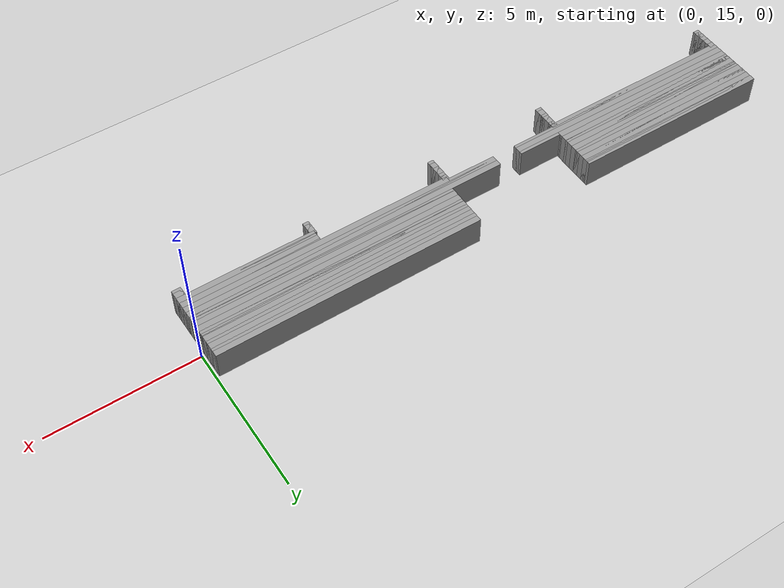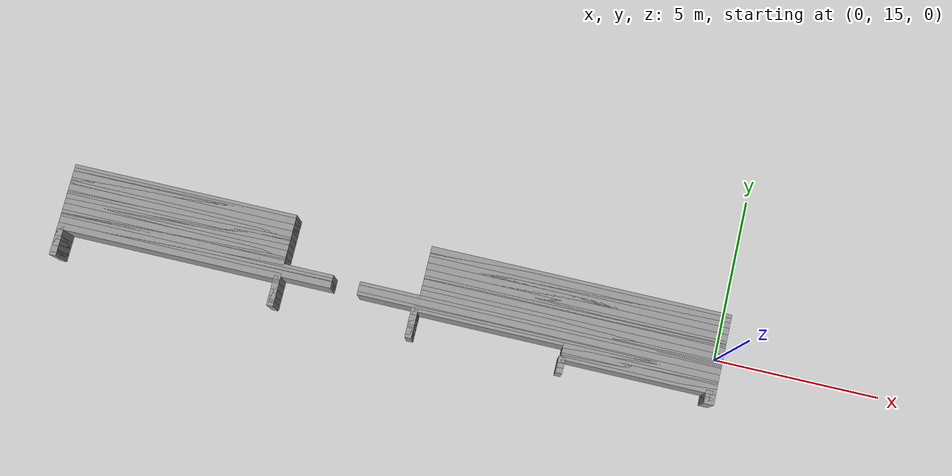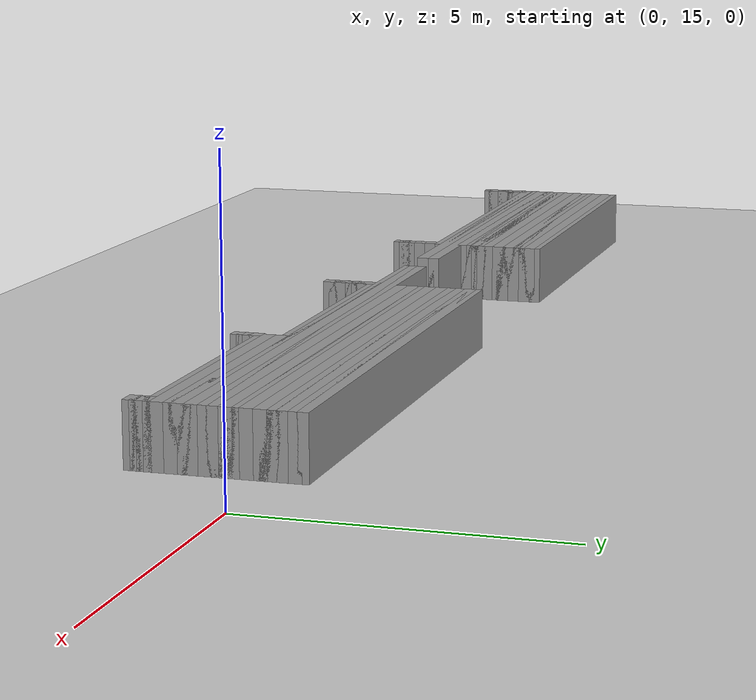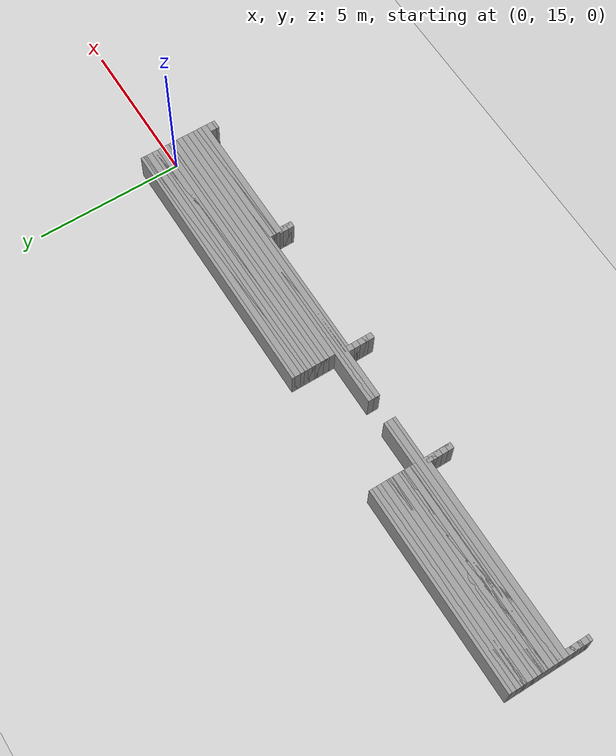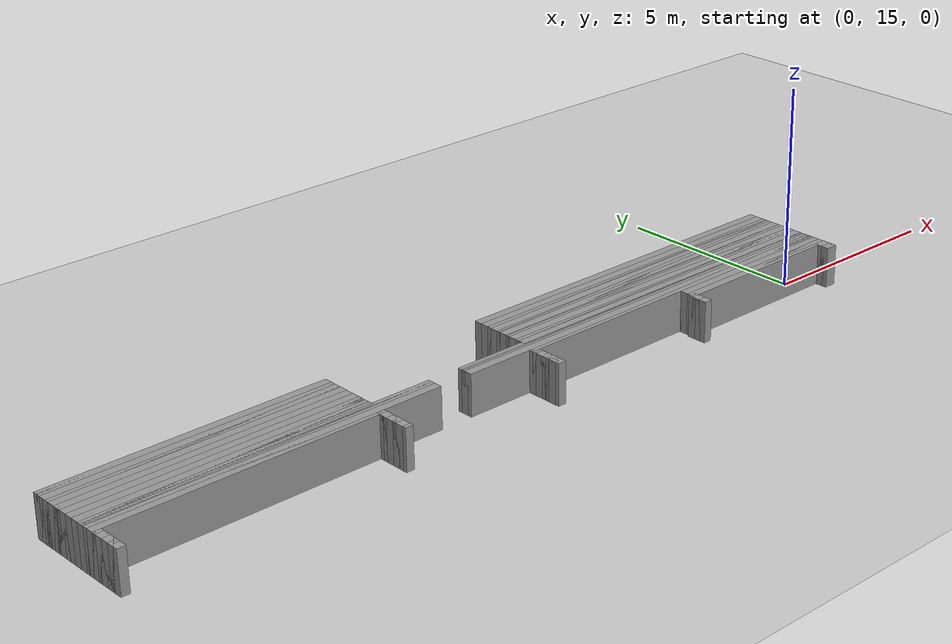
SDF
<sdf version="1.6">
 <world name="GridMap">
  <include><uri>model://sun</uri></include>
  <include><uri>model://ground_plane</uri></include>
  <model name="GridMap">
   <link name="Wall_(45.5,135.0)">
    <collision name="Wall_(45.5,135.0)_Collision">
     <geometry><box><size>0.2 0.2 1.0</size></box></geometry>
     <pose>-4.55 13.5 0.5 0 -0 0</pose>
    </collision>
    <visual name="Wall_(45.5,135.0)_Visual">
     <geometry><box><size>0.2 0.2 1.0</size></box></geometry>
     <pose>-4.55 13.5 0.5 0 -0 0</pose>
     <material>
      <script><uri>file://media/materials/scripts/gazebo.material</uri><name>Gazebo/Grey</name></script>
      <ambient>1 1 1 1</ambient>
     </material>
     <meta><layer>0</layer></meta>
    </visual>
    <pose>0 0 0.5 0 -0 0</pose>
   </link>
   <link name="Wall_(90.5,135.0)">
    <collision name="Wall_(90.5,135.0)_Collision">
     <geometry><box><size>0.2 0.2 1.0</size></box></geometry>
     <pose>-9.05 13.5 0.5 0 -0 0</pose>
    </collision>
    <visual name="Wall_(90.5,135.0)_Visual">
     <geometry><box><size>0.2 0.2 1.0</size></box></geometry>
     <pose>-9.05 13.5 0.5 0 -0 0</pose>
     <material>
      <script><uri>file://media/materials/scripts/gazebo.material</uri><name>Gazebo/Grey</name></script>
      <ambient>1 1 1 1</ambient>
     </material>
     <meta><layer>0</layer></meta>
    </visual>
    <pose>0 0 0.5 0 -0 0</pose>
   </link>
   <link name="Wall_(132.0,135.0)">
    <collision name="Wall_(132.0,135.0)_Collision">
     <geometry><box><size>0.2 0.2 1.0</size></box></geometry>
     <pose>-13.200000000000001 13.5 0.5 0 -0 0</pose>
    </collision>
    <visual name="Wall_(132.0,135.0)_Visual">
     <geometry><box><size>0.2 0.2 1.0</size></box></geometry>
     <pose>-13.200000000000001 13.5 0.5 0 -0 0</pose>
     <material>
      <script><uri>file://media/materials/scripts/gazebo.material</uri><name>Gazebo/Grey</name></script>
      <ambient>1 1 1 1</ambient>
     </material>
     <meta><layer>0</layer></meta>
    </visual>
    <pose>0 0 0.5 0 -0 0</pose>
   </link>
   <link name="Wall_(198.0,135.0)">
    <collision name="Wall_(198.0,135.0)_Collision">
     <geometry><box><size>0.2 0.2 1.0</size></box></geometry>
     <pose>-19.8 13.5 0.5 0 -0 0</pose>
    </collision>
    <visual name="Wall_(198.0,135.0)_Visual">
     <geometry><box><size>0.2 0.2 1.0</size></box></geometry>
     <pose>-19.8 13.5 0.5 0 -0 0</pose>
     <material>
      <script><uri>file://media/materials/scripts/gazebo.material</uri><name>Gazebo/Grey</name></script>
      <ambient>1 1 1 1</ambient>
     </material>
     <meta><layer>0</layer></meta>
    </visual>
    <pose>0 0 0.5 0 -0 0</pose>
   </link>
   <link name="Wall_(1.5,136.0)">
    <collision name="Wall_(1.5,136.0)_Collision">
     <geometry><box><size>0.30000000000000004 0.2 1.0</size></box></geometry>
     <pose>-0.15000000000000002 13.600000000000001 0.5 0 -0 0</pose>
    </collision>
    <visual name="Wall_(1.5,136.0)_Visual">
     <geometry><box><size>0.30000000000000004 0.2 1.0</size></box></geometry>
     <pose>-0.15000000000000002 13.600000000000001 0.5 0 -0 0</pose>
     <material>
      <script><uri>file://media/materials/scripts/gazebo.material</uri><name>Gazebo/Grey</name></script>
      <ambient>1 1 1 1</ambient>
     </material>
     <meta><layer>0</layer></meta>
    </visual>
    <pose>0 0 0.5 0 -0 0</pose>
   </link>
   <link name="Wall_(45.5,136.0)">
    <collision name="Wall_(45.5,136.0)_Collision">
     <geometry><box><size>0.2 0.2 1.0</size></box></geometry>
     <pose>-4.55 13.600000000000001 0.5 0 -0 0</pose>
    </collision>
    <visual name="Wall_(45.5,136.0)_Visual">
     <geometry><box><size>0.2 0.2 1.0</size></box></geometry>
     <pose>-4.55 13.600000000000001 0.5 0 -0 0</pose>
     <material>
      <script><uri>file://media/materials/scripts/gazebo.material</uri><name>Gazebo/Grey</name></script>
      <ambient>1 1 1 1</ambient>
     </material>
     <meta><layer>0</layer></meta>
    </visual>
    <pose>0 0 0.5 0 -0 0</pose>
   </link>
   <link name="Wall_(90.5,136.0)">
    <collision name="Wall_(90.5,136.0)_Collision">
     <geometry><box><size>0.2 0.2 1.0</size></box></geometry>
     <pose>-9.05 13.600000000000001 0.5 0 -0 0</pose>
    </collision>
    <visual name="Wall_(90.5,136.0)_Visual">
     <geometry><box><size>0.2 0.2 1.0</size></box></geometry>
     <pose>-9.05 13.600000000000001 0.5 0 -0 0</pose>
     <material>
      <script><uri>file://media/materials/scripts/gazebo.material</uri><name>Gazebo/Grey</name></script>
      <ambient>1 1 1 1</ambient>
     </material>
     <meta><layer>0</layer></meta>
    </visual>
    <pose>0 0 0.5 0 -0 0</pose>
   </link>
   <link name="Wall_(132.0,136.0)">
    <collision name="Wall_(132.0,136.0)_Collision">
     <geometry><box><size>0.2 0.2 1.0</size></box></geometry>
     <pose>-13.200000000000001 13.600000000000001 0.5 0 -0 0</pose>
    </collision>
    <visual name="Wall_(132.0,136.0)_Visual">
     <geometry><box><size>0.2 0.2 1.0</size></box></geometry>
     <pose>-13.200000000000001 13.600000000000001 0.5 0 -0 0</pose>
     <material>
      <script><uri>file://media/materials/scripts/gazebo.material</uri><name>Gazebo/Grey</name></script>
      <ambient>1 1 1 1</ambient>
     </material>
     <meta><layer>0</layer></meta>
    </visual>
    <pose>0 0 0.5 0 -0 0</pose>
   </link>
   <link name="Wall_(198.0,136.0)">
    <collision name="Wall_(198.0,136.0)_Collision">
     <geometry><box><size>0.2 0.2 1.0</size></box></geometry>
     <pose>-19.8 13.600000000000001 0.5 0 -0 0</pose>
    </collision>
    <visual name="Wall_(198.0,136.0)_Visual">
     <geometry><box><size>0.2 0.2 1.0</size></box></geometry>
     <pose>-19.8 13.600000000000001 0.5 0 -0 0</pose>
     <material>
      <script><uri>file://media/materials/scripts/gazebo.material</uri><name>Gazebo/Grey</name></script>
      <ambient>1 1 1 1</ambient>
     </material>
     <meta><layer>0</layer></meta>
    </visual>
    <pose>0 0 0.5 0 -0 0</pose>
   </link>
   <link name="Wall_(1.5,137.0)">
    <collision name="Wall_(1.5,137.0)_Collision">
     <geometry><box><size>0.30000000000000004 0.2 1.0</size></box></geometry>
     <pose>-0.15000000000000002 13.700000000000001 0.5 0 -0 0</pose>
    </collision>
    <visual name="Wall_(1.5,137.0)_Visual">
     <geometry><box><size>0.30000000000000004 0.2 1.0</size></box></geometry>
     <pose>-0.15000000000000002 13.700000000000001 0.5 0 -0 0</pose>
     <material>
      <script><uri>file://media/materials/scripts/gazebo.material</uri><name>Gazebo/Grey</name></script>
      <ambient>1 1 1 1</ambient>
     </material>
     <meta><layer>0</layer></meta>
    </visual>
    <pose>0 0 0.5 0 -0 0</pose>
   </link>
   <link name="Wall_(45.5,137.0)">
    <collision name="Wall_(45.5,137.0)_Collision">
     <geometry><box><size>0.2 0.2 1.0</size></box></geometry>
     <pose>-4.55 13.700000000000001 0.5 0 -0 0</pose>
    </collision>
    <visual name="Wall_(45.5,137.0)_Visual">
     <geometry><box><size>0.2 0.2 1.0</size></box></geometry>
     <pose>-4.55 13.700000000000001 0.5 0 -0 0</pose>
     <material>
      <script><uri>file://media/materials/scripts/gazebo.material</uri><name>Gazebo/Grey</name></script>
      <ambient>1 1 1 1</ambient>
     </material>
     <meta><layer>0</layer></meta>
    </visual>
    <pose>0 0 0.5 0 -0 0</pose>
   </link>
   <link name="Wall_(90.5,137.0)">
    <collision name="Wall_(90.5,137.0)_Collision">
     <geometry><box><size>0.2 0.2 1.0</size></box></geometry>
     <pose>-9.05 13.700000000000001 0.5 0 -0 0</pose>
    </collision>
    <visual name="Wall_(90.5,137.0)_Visual">
     <geometry><box><size>0.2 0.2 1.0</size></box></geometry>
     <pose>-9.05 13.700000000000001 0.5 0 -0 0</pose>
     <material>
      <script><uri>file://media/materials/scripts/gazebo.material</uri><name>Gazebo/Grey</name></script>
      <ambient>1 1 1 1</ambient>
     </material>
     <meta><layer>0</layer></meta>
    </visual>
    <pose>0 0 0.5 0 -0 0</pose>
   </link>
   <link name="Wall_(132.0,137.0)">
    <collision name="Wall_(132.0,137.0)_Collision">
     <geometry><box><size>0.2 0.2 1.0</size></box></geometry>
     <pose>-13.200000000000001 13.700000000000001 0.5 0 -0 0</pose>
    </collision>
    <visual name="Wall_(132.0,137.0)_Visual">
     <geometry><box><size>0.2 0.2 1.0</size></box></geometry>
     <pose>-13.200000000000001 13.700000000000001 0.5 0 -0 0</pose>
     <material>
      <script><uri>file://media/materials/scripts/gazebo.material</uri><name>Gazebo/Grey</name></script>
      <ambient>1 1 1 1</ambient>
     </material>
     <meta><layer>0</layer></meta>
    </visual>
    <pose>0 0 0.5 0 -0 0</pose>
   </link>
   <link name="Wall_(198.0,137.0)">
    <collision name="Wall_(198.0,137.0)_Collision">
     <geometry><box><size>0.2 0.2 1.0</size></box></geometry>
     <pose>-19.8 13.700000000000001 0.5 0 -0 0</pose>
    </collision>
    <visual name="Wall_(198.0,137.0)_Visual">
     <geometry><box><size>0.2 0.2 1.0</size></box></geometry>
     <pose>-19.8 13.700000000000001 0.5 0 -0 0</pose>
     <material>
      <script><uri>file://media/materials/scripts/gazebo.material</uri><name>Gazebo/Grey</name></script>
      <ambient>1 1 1 1</ambient>
     </material>
     <meta><layer>0</layer></meta>
    </visual>
    <pose>0 0 0.5 0 -0 0</pose>
   </link>
   <link name="Wall_(1.5,138.0)">
    <collision name="Wall_(1.5,138.0)_Collision">
     <geometry><box><size>0.30000000000000004 0.2 1.0</size></box></geometry>
     <pose>-0.15000000000000002 13.8 0.5 0 -0 0</pose>
    </collision>
    <visual name="Wall_(1.5,138.0)_Visual">
     <geometry><box><size>0.30000000000000004 0.2 1.0</size></box></geometry>
     <pose>-0.15000000000000002 13.8 0.5 0 -0 0</pose>
     <material>
      <script><uri>file://media/materials/scripts/gazebo.material</uri><name>Gazebo/Grey</name></script>
      <ambient>1 1 1 1</ambient>
     </material>
     <meta><layer>0</layer></meta>
    </visual>
    <pose>0 0 0.5 0 -0 0</pose>
   </link>
   <link name="Wall_(45.5,138.0)">
    <collision name="Wall_(45.5,138.0)_Collision">
     <geometry><box><size>0.2 0.2 1.0</size></box></geometry>
     <pose>-4.55 13.8 0.5 0 -0 0</pose>
    </collision>
    <visual name="Wall_(45.5,138.0)_Visual">
     <geometry><box><size>0.2 0.2 1.0</size></box></geometry>
     <pose>-4.55 13.8 0.5 0 -0 0</pose>
     <material>
      <script><uri>file://media/materials/scripts/gazebo.material</uri><name>Gazebo/Grey</name></script>
      <ambient>1 1 1 1</ambient>
     </material>
     <meta><layer>0</layer></meta>
    </visual>
    <pose>0 0 0.5 0 -0 0</pose>
   </link>
   <link name="Wall_(90.5,138.0)">
    <collision name="Wall_(90.5,138.0)_Collision">
     <geometry><box><size>0.2 0.2 1.0</size></box></geometry>
     <pose>-9.05 13.8 0.5 0 -0 0</pose>
    </collision>
    <visual name="Wall_(90.5,138.0)_Visual">
     <geometry><box><size>0.2 0.2 1.0</size></box></geometry>
     <pose>-9.05 13.8 0.5 0 -0 0</pose>
     <material>
      <script><uri>file://media/materials/scripts/gazebo.material</uri><name>Gazebo/Grey</name></script>
      <ambient>1 1 1 1</ambient>
     </material>
     <meta><layer>0</layer></meta>
    </visual>
    <pose>0 0 0.5 0 -0 0</pose>
   </link>
   <link name="Wall_(132.0,138.0)">
    <collision name="Wall_(132.0,138.0)_Collision">
     <geometry><box><size>0.2 0.2 1.0</size></box></geometry>
     <pose>-13.200000000000001 13.8 0.5 0 -0 0</pose>
    </collision>
    <visual name="Wall_(132.0,138.0)_Visual">
     <geometry><box><size>0.2 0.2 1.0</size></box></geometry>
     <pose>-13.200000000000001 13.8 0.5 0 -0 0</pose>
     <material>
      <script><uri>file://media/materials/scripts/gazebo.material</uri><name>Gazebo/Grey</name></script>
      <ambient>1 1 1 1</ambient>
     </material>
     <meta><layer>0</layer></meta>
    </visual>
    <pose>0 0 0.5 0 -0 0</pose>
   </link>
   <link name="Wall_(198.0,138.0)">
    <collision name="Wall_(198.0,138.0)_Collision">
     <geometry><box><size>0.2 0.2 1.0</size></box></geometry>
     <pose>-19.8 13.8 0.5 0 -0 0</pose>
    </collision>
    <visual name="Wall_(198.0,138.0)_Visual">
     <geometry><box><size>0.2 0.2 1.0</size></box></geometry>
     <pose>-19.8 13.8 0.5 0 -0 0</pose>
     <material>
      <script><uri>file://media/materials/scripts/gazebo.material</uri><name>Gazebo/Grey</name></script>
      <ambient>1 1 1 1</ambient>
     </material>
     <meta><layer>0</layer></meta>
    </visual>
    <pose>0 0 0.5 0 -0 0</pose>
   </link>
   <link name="Wall_(23.0,139.0)">
    <collision name="Wall_(23.0,139.0)_Collision">
     <geometry><box><size>4.6000000000000005 0.2 1.0</size></box></geometry>
     <pose>-2.3000000000000003 13.9 0.5 0 -0 0</pose>
    </collision>
    <visual name="Wall_(23.0,139.0)_Visual">
     <geometry><box><size>4.6000000000000005 0.2 1.0</size></box></geometry>
     <pose>-2.3000000000000003 13.9 0.5 0 -0 0</pose>
     <material>
      <script><uri>file://media/materials/scripts/gazebo.material</uri><name>Gazebo/Grey</name></script>
      <ambient>1 1 1 1</ambient>
     </material>
     <meta><layer>0</layer></meta>
    </visual>
    <pose>0 0 0.5 0 -0 0</pose>
   </link>
   <link name="Wall_(90.5,139.0)">
    <collision name="Wall_(90.5,139.0)_Collision">
     <geometry><box><size>0.2 0.2 1.0</size></box></geometry>
     <pose>-9.05 13.9 0.5 0 -0 0</pose>
    </collision>
    <visual name="Wall_(90.5,139.0)_Visual">
     <geometry><box><size>0.2 0.2 1.0</size></box></geometry>
     <pose>-9.05 13.9 0.5 0 -0 0</pose>
     <material>
      <script><uri>file://media/materials/scripts/gazebo.material</uri><name>Gazebo/Grey</name></script>
      <ambient>1 1 1 1</ambient>
     </material>
     <meta><layer>0</layer></meta>
    </visual>
    <pose>0 0 0.5 0 -0 0</pose>
   </link>
   <link name="Wall_(132.0,139.0)">
    <collision name="Wall_(132.0,139.0)_Collision">
     <geometry><box><size>0.2 0.2 1.0</size></box></geometry>
     <pose>-13.200000000000001 13.9 0.5 0 -0 0</pose>
    </collision>
    <visual name="Wall_(132.0,139.0)_Visual">
     <geometry><box><size>0.2 0.2 1.0</size></box></geometry>
     <pose>-13.200000000000001 13.9 0.5 0 -0 0</pose>
     <material>
      <script><uri>file://media/materials/scripts/gazebo.material</uri><name>Gazebo/Grey</name></script>
      <ambient>1 1 1 1</ambient>
     </material>
     <meta><layer>0</layer></meta>
    </visual>
    <pose>0 0 0.5 0 -0 0</pose>
   </link>
   <link name="Wall_(198.0,139.0)">
    <collision name="Wall_(198.0,139.0)_Collision">
     <geometry><box><size>0.2 0.2 1.0</size></box></geometry>
     <pose>-19.8 13.9 0.5 0 -0 0</pose>
    </collision>
    <visual name="Wall_(198.0,139.0)_Visual">
     <geometry><box><size>0.2 0.2 1.0</size></box></geometry>
     <pose>-19.8 13.9 0.5 0 -0 0</pose>
     <material>
      <script><uri>file://media/materials/scripts/gazebo.material</uri><name>Gazebo/Grey</name></script>
      <ambient>1 1 1 1</ambient>
     </material>
     <meta><layer>0</layer></meta>
    </visual>
    <pose>0 0 0.5 0 -0 0</pose>
   </link>
   <link name="Wall_(23.0,140.0)">
    <collision name="Wall_(23.0,140.0)_Collision">
     <geometry><box><size>4.6000000000000005 0.2 1.0</size></box></geometry>
     <pose>-2.3000000000000003 14.0 0.5 0 -0 0</pose>
    </collision>
    <visual name="Wall_(23.0,140.0)_Visual">
     <geometry><box><size>4.6000000000000005 0.2 1.0</size></box></geometry>
     <pose>-2.3000000000000003 14.0 0.5 0 -0 0</pose>
     <material>
      <script><uri>file://media/materials/scripts/gazebo.material</uri><name>Gazebo/Grey</name></script>
      <ambient>1 1 1 1</ambient>
     </material>
     <meta><layer>0</layer></meta>
    </visual>
    <pose>0 0 0.5 0 -0 0</pose>
   </link>
   <link name="Wall_(90.5,140.0)">
    <collision name="Wall_(90.5,140.0)_Collision">
     <geometry><box><size>0.2 0.2 1.0</size></box></geometry>
     <pose>-9.05 14.0 0.5 0 -0 0</pose>
    </collision>
    <visual name="Wall_(90.5,140.0)_Visual">
     <geometry><box><size>0.2 0.2 1.0</size></box></geometry>
     <pose>-9.05 14.0 0.5 0 -0 0</pose>
     <material>
      <script><uri>file://media/materials/scripts/gazebo.material</uri><name>Gazebo/Grey</name></script>
      <ambient>1 1 1 1</ambient>
     </material>
     <meta><layer>0</layer></meta>
    </visual>
    <pose>0 0 0.5 0 -0 0</pose>
   </link>
   <link name="Wall_(132.0,140.0)">
    <collision name="Wall_(132.0,140.0)_Collision">
     <geometry><box><size>0.2 0.2 1.0</size></box></geometry>
     <pose>-13.200000000000001 14.0 0.5 0 -0 0</pose>
    </collision>
    <visual name="Wall_(132.0,140.0)_Visual">
     <geometry><box><size>0.2 0.2 1.0</size></box></geometry>
     <pose>-13.200000000000001 14.0 0.5 0 -0 0</pose>
     <material>
      <script><uri>file://media/materials/scripts/gazebo.material</uri><name>Gazebo/Grey</name></script>
      <ambient>1 1 1 1</ambient>
     </material>
     <meta><layer>0</layer></meta>
    </visual>
    <pose>0 0 0.5 0 -0 0</pose>
   </link>
   <link name="Wall_(198.0,140.0)">
    <collision name="Wall_(198.0,140.0)_Collision">
     <geometry><box><size>0.2 0.2 1.0</size></box></geometry>
     <pose>-19.8 14.0 0.5 0 -0 0</pose>
    </collision>
    <visual name="Wall_(198.0,140.0)_Visual">
     <geometry><box><size>0.2 0.2 1.0</size></box></geometry>
     <pose>-19.8 14.0 0.5 0 -0 0</pose>
     <material>
      <script><uri>file://media/materials/scripts/gazebo.material</uri><name>Gazebo/Grey</name></script>
      <ambient>1 1 1 1</ambient>
     </material>
     <meta><layer>0</layer></meta>
    </visual>
    <pose>0 0 0.5 0 -0 0</pose>
   </link>
   <link name="Wall_(23.0,141.0)">
    <collision name="Wall_(23.0,141.0)_Collision">
     <geometry><box><size>4.6000000000000005 0.2 1.0</size></box></geometry>
     <pose>-2.3000000000000003 14.100000000000001 0.5 0 -0 0</pose>
    </collision>
    <visual name="Wall_(23.0,141.0)_Visual">
     <geometry><box><size>4.6000000000000005 0.2 1.0</size></box></geometry>
     <pose>-2.3000000000000003 14.100000000000001 0.5 0 -0 0</pose>
     <material>
      <script><uri>file://media/materials/scripts/gazebo.material</uri><name>Gazebo/Grey</name></script>
      <ambient>1 1 1 1</ambient>
     </material>
     <meta><layer>0</layer></meta>
    </visual>
    <pose>0 0 0.5 0 -0 0</pose>
   </link>
   <link name="Wall_(90.5,141.0)">
    <collision name="Wall_(90.5,141.0)_Collision">
     <geometry><box><size>0.2 0.2 1.0</size></box></geometry>
     <pose>-9.05 14.100000000000001 0.5 0 -0 0</pose>
    </collision>
    <visual name="Wall_(90.5,141.0)_Visual">
     <geometry><box><size>0.2 0.2 1.0</size></box></geometry>
     <pose>-9.05 14.100000000000001 0.5 0 -0 0</pose>
     <material>
      <script><uri>file://media/materials/scripts/gazebo.material</uri><name>Gazebo/Grey</name></script>
      <ambient>1 1 1 1</ambient>
     </material>
     <meta><layer>0</layer></meta>
    </visual>
    <pose>0 0 0.5 0 -0 0</pose>
   </link>
   <link name="Wall_(132.0,141.0)">
    <collision name="Wall_(132.0,141.0)_Collision">
     <geometry><box><size>0.2 0.2 1.0</size></box></geometry>
     <pose>-13.200000000000001 14.100000000000001 0.5 0 -0 0</pose>
    </collision>
    <visual name="Wall_(132.0,141.0)_Visual">
     <geometry><box><size>0.2 0.2 1.0</size></box></geometry>
     <pose>-13.200000000000001 14.100000000000001 0.5 0 -0 0</pose>
     <material>
      <script><uri>file://media/materials/scripts/gazebo.material</uri><name>Gazebo/Grey</name></script>
      <ambient>1 1 1 1</ambient>
     </material>
     <meta><layer>0</layer></meta>
    </visual>
    <pose>0 0 0.5 0 -0 0</pose>
   </link>
   <link name="Wall_(198.0,141.0)">
    <collision name="Wall_(198.0,141.0)_Collision">
     <geometry><box><size>0.2 0.2 1.0</size></box></geometry>
     <pose>-19.8 14.100000000000001 0.5 0 -0 0</pose>
    </collision>
    <visual name="Wall_(198.0,141.0)_Visual">
     <geometry><box><size>0.2 0.2 1.0</size></box></geometry>
     <pose>-19.8 14.100000000000001 0.5 0 -0 0</pose>
     <material>
      <script><uri>file://media/materials/scripts/gazebo.material</uri><name>Gazebo/Grey</name></script>
      <ambient>1 1 1 1</ambient>
     </material>
     <meta><layer>0</layer></meta>
    </visual>
    <pose>0 0 0.5 0 -0 0</pose>
   </link>
   <link name="Wall_(23.0,142.0)">
    <collision name="Wall_(23.0,142.0)_Collision">
     <geometry><box><size>4.6000000000000005 0.2 1.0</size></box></geometry>
     <pose>-2.3000000000000003 14.200000000000001 0.5 0 -0 0</pose>
    </collision>
    <visual name="Wall_(23.0,142.0)_Visual">
     <geometry><box><size>4.6000000000000005 0.2 1.0</size></box></geometry>
     <pose>-2.3000000000000003 14.200000000000001 0.5 0 -0 0</pose>
     <material>
      <script><uri>file://media/materials/scripts/gazebo.material</uri><name>Gazebo/Grey</name></script>
      <ambient>1 1 1 1</ambient>
     </material>
     <meta><layer>0</layer></meta>
    </visual>
    <pose>0 0 0.5 0 -0 0</pose>
   </link>
   <link name="Wall_(90.5,142.0)">
    <collision name="Wall_(90.5,142.0)_Collision">
     <geometry><box><size>0.2 0.2 1.0</size></box></geometry>
     <pose>-9.05 14.200000000000001 0.5 0 -0 0</pose>
    </collision>
    <visual name="Wall_(90.5,142.0)_Visual">
     <geometry><box><size>0.2 0.2 1.0</size></box></geometry>
     <pose>-9.05 14.200000000000001 0.5 0 -0 0</pose>
     <material>
      <script><uri>file://media/materials/scripts/gazebo.material</uri><name>Gazebo/Grey</name></script>
      <ambient>1 1 1 1</ambient>
     </material>
     <meta><layer>0</layer></meta>
    </visual>
    <pose>0 0 0.5 0 -0 0</pose>
   </link>
   <link name="Wall_(132.0,142.0)">
    <collision name="Wall_(132.0,142.0)_Collision">
     <geometry><box><size>0.2 0.2 1.0</size></box></geometry>
     <pose>-13.200000000000001 14.200000000000001 0.5 0 -0 0</pose>
    </collision>
    <visual name="Wall_(132.0,142.0)_Visual">
     <geometry><box><size>0.2 0.2 1.0</size></box></geometry>
     <pose>-13.200000000000001 14.200000000000001 0.5 0 -0 0</pose>
     <material>
      <script><uri>file://media/materials/scripts/gazebo.material</uri><name>Gazebo/Grey</name></script>
      <ambient>1 1 1 1</ambient>
     </material>
     <meta><layer>0</layer></meta>
    </visual>
    <pose>0 0 0.5 0 -0 0</pose>
   </link>
   <link name="Wall_(198.0,142.0)">
    <collision name="Wall_(198.0,142.0)_Collision">
     <geometry><box><size>0.2 0.2 1.0</size></box></geometry>
     <pose>-19.8 14.200000000000001 0.5 0 -0 0</pose>
    </collision>
    <visual name="Wall_(198.0,142.0)_Visual">
     <geometry><box><size>0.2 0.2 1.0</size></box></geometry>
     <pose>-19.8 14.200000000000001 0.5 0 -0 0</pose>
     <material>
      <script><uri>file://media/materials/scripts/gazebo.material</uri><name>Gazebo/Grey</name></script>
      <ambient>1 1 1 1</ambient>
     </material>
     <meta><layer>0</layer></meta>
    </visual>
    <pose>0 0 0.5 0 -0 0</pose>
   </link>
   <link name="Wall_(45.5,143.0)">
    <collision name="Wall_(45.5,143.0)_Collision">
     <geometry><box><size>9.1 0.2 1.0</size></box></geometry>
     <pose>-4.55 14.3 0.5 0 -0 0</pose>
    </collision>
    <visual name="Wall_(45.5,143.0)_Visual">
     <geometry><box><size>9.1 0.2 1.0</size></box></geometry>
     <pose>-4.55 14.3 0.5 0 -0 0</pose>
     <material>
      <script><uri>file://media/materials/scripts/gazebo.material</uri><name>Gazebo/Grey</name></script>
      <ambient>1 1 1 1</ambient>
     </material>
     <meta><layer>0</layer></meta>
    </visual>
    <pose>0 0 0.5 0 -0 0</pose>
   </link>
   <link name="Wall_(165.0,143.0)">
    <collision name="Wall_(165.0,143.0)_Collision">
     <geometry><box><size>6.800000000000001 0.2 1.0</size></box></geometry>
     <pose>-16.5 14.3 0.5 0 -0 0</pose>
    </collision>
    <visual name="Wall_(165.0,143.0)_Visual">
     <geometry><box><size>6.800000000000001 0.2 1.0</size></box></geometry>
     <pose>-16.5 14.3 0.5 0 -0 0</pose>
     <material>
      <script><uri>file://media/materials/scripts/gazebo.material</uri><name>Gazebo/Grey</name></script>
      <ambient>1 1 1 1</ambient>
     </material>
     <meta><layer>0</layer></meta>
    </visual>
    <pose>0 0 0.5 0 -0 0</pose>
   </link>
   <link name="Wall_(54.0,144.0)">
    <collision name="Wall_(54.0,144.0)_Collision">
     <geometry><box><size>10.8 0.2 1.0</size></box></geometry>
     <pose>-5.4 14.4 0.5 0 -0 0</pose>
    </collision>
    <visual name="Wall_(54.0,144.0)_Visual">
     <geometry><box><size>10.8 0.2 1.0</size></box></geometry>
     <pose>-5.4 14.4 0.5 0 -0 0</pose>
     <material>
      <script><uri>file://media/materials/scripts/gazebo.material</uri><name>Gazebo/Grey</name></script>
      <ambient>1 1 1 1</ambient>
     </material>
     <meta><layer>0</layer></meta>
    </visual>
    <pose>0 0 0.5 0 -0 0</pose>
   </link>
   <link name="Wall_(157.5,144.0)">
    <collision name="Wall_(157.5,144.0)_Collision">
     <geometry><box><size>8.3 0.2 1.0</size></box></geometry>
     <pose>-15.75 14.4 0.5 0 -0 0</pose>
    </collision>
    <visual name="Wall_(157.5,144.0)_Visual">
     <geometry><box><size>8.3 0.2 1.0</size></box></geometry>
     <pose>-15.75 14.4 0.5 0 -0 0</pose>
     <material>
      <script><uri>file://media/materials/scripts/gazebo.material</uri><name>Gazebo/Grey</name></script>
      <ambient>1 1 1 1</ambient>
     </material>
     <meta><layer>0</layer></meta>
    </visual>
    <pose>0 0 0.5 0 -0 0</pose>
   </link>
   <link name="Wall_(54.0,145.0)">
    <collision name="Wall_(54.0,145.0)_Collision">
     <geometry><box><size>10.8 0.2 1.0</size></box></geometry>
     <pose>-5.4 14.5 0.5 0 -0 0</pose>
    </collision>
    <visual name="Wall_(54.0,145.0)_Visual">
     <geometry><box><size>10.8 0.2 1.0</size></box></geometry>
     <pose>-5.4 14.5 0.5 0 -0 0</pose>
     <material>
      <script><uri>file://media/materials/scripts/gazebo.material</uri><name>Gazebo/Grey</name></script>
      <ambient>1 1 1 1</ambient>
     </material>
     <meta><layer>0</layer></meta>
    </visual>
    <pose>0 0 0.5 0 -0 0</pose>
   </link>
   <link name="Wall_(157.5,145.0)">
    <collision name="Wall_(157.5,145.0)_Collision">
     <geometry><box><size>8.3 0.2 1.0</size></box></geometry>
     <pose>-15.75 14.5 0.5 0 -0 0</pose>
    </collision>
    <visual name="Wall_(157.5,145.0)_Visual">
     <geometry><box><size>8.3 0.2 1.0</size></box></geometry>
     <pose>-15.75 14.5 0.5 0 -0 0</pose>
     <material>
      <script><uri>file://media/materials/scripts/gazebo.material</uri><name>Gazebo/Grey</name></script>
      <ambient>1 1 1 1</ambient>
     </material>
     <meta><layer>0</layer></meta>
    </visual>
    <pose>0 0 0.5 0 -0 0</pose>
   </link>
   <link name="Wall_(54.0,146.0)">
    <collision name="Wall_(54.0,146.0)_Collision">
     <geometry><box><size>10.8 0.2 1.0</size></box></geometry>
     <pose>-5.4 14.600000000000001 0.5 0 -0 0</pose>
    </collision>
    <visual name="Wall_(54.0,146.0)_Visual">
     <geometry><box><size>10.8 0.2 1.0</size></box></geometry>
     <pose>-5.4 14.600000000000001 0.5 0 -0 0</pose>
     <material>
      <script><uri>file://media/materials/scripts/gazebo.material</uri><name>Gazebo/Grey</name></script>
      <ambient>1 1 1 1</ambient>
     </material>
     <meta><layer>0</layer></meta>
    </visual>
    <pose>0 0 0.5 0 -0 0</pose>
   </link>
   <link name="Wall_(157.5,146.0)">
    <collision name="Wall_(157.5,146.0)_Collision">
     <geometry><box><size>8.3 0.2 1.0</size></box></geometry>
     <pose>-15.75 14.600000000000001 0.5 0 -0 0</pose>
    </collision>
    <visual name="Wall_(157.5,146.0)_Visual">
     <geometry><box><size>8.3 0.2 1.0</size></box></geometry>
     <pose>-15.75 14.600000000000001 0.5 0 -0 0</pose>
     <material>
      <script><uri>file://media/materials/scripts/gazebo.material</uri><name>Gazebo/Grey</name></script>
      <ambient>1 1 1 1</ambient>
     </material>
     <meta><layer>0</layer></meta>
    </visual>
    <pose>0 0 0.5 0 -0 0</pose>
   </link>
   <link name="Wall_(45.0,147.0)">
    <collision name="Wall_(45.0,147.0)_Collision">
     <geometry><box><size>9.0 0.2 1.0</size></box></geometry>
     <pose>-4.5 14.700000000000001 0.5 0 -0 0</pose>
    </collision>
    <visual name="Wall_(45.0,147.0)_Visual">
     <geometry><box><size>9.0 0.2 1.0</size></box></geometry>
     <pose>-4.5 14.700000000000001 0.5 0 -0 0</pose>
     <material>
      <script><uri>file://media/materials/scripts/gazebo.material</uri><name>Gazebo/Grey</name></script>
      <ambient>1 1 1 1</ambient>
     </material>
     <meta><layer>0</layer></meta>
    </visual>
    <pose>0 0 0.5 0 -0 0</pose>
   </link>
   <link name="Wall_(165.0,147.0)">
    <collision name="Wall_(165.0,147.0)_Collision">
     <geometry><box><size>6.800000000000001 0.2 1.0</size></box></geometry>
     <pose>-16.5 14.700000000000001 0.5 0 -0 0</pose>
    </collision>
    <visual name="Wall_(165.0,147.0)_Visual">
     <geometry><box><size>6.800000000000001 0.2 1.0</size></box></geometry>
     <pose>-16.5 14.700000000000001 0.5 0 -0 0</pose>
     <material>
      <script><uri>file://media/materials/scripts/gazebo.material</uri><name>Gazebo/Grey</name></script>
      <ambient>1 1 1 1</ambient>
     </material>
     <meta><layer>0</layer></meta>
    </visual>
    <pose>0 0 0.5 0 -0 0</pose>
   </link>
   <link name="Wall_(45.0,148.0)">
    <collision name="Wall_(45.0,148.0)_Collision">
     <geometry><box><size>9.0 0.2 1.0</size></box></geometry>
     <pose>-4.5 14.8 0.5 0 -0 0</pose>
    </collision>
    <visual name="Wall_(45.0,148.0)_Visual">
     <geometry><box><size>9.0 0.2 1.0</size></box></geometry>
     <pose>-4.5 14.8 0.5 0 -0 0</pose>
     <material>
      <script><uri>file://media/materials/scripts/gazebo.material</uri><name>Gazebo/Grey</name></script>
      <ambient>1 1 1 1</ambient>
     </material>
     <meta><layer>0</layer></meta>
    </visual>
    <pose>0 0 0.5 0 -0 0</pose>
   </link>
   <link name="Wall_(165.0,148.0)">
    <collision name="Wall_(165.0,148.0)_Collision">
     <geometry><box><size>6.800000000000001 0.2 1.0</size></box></geometry>
     <pose>-16.5 14.8 0.5 0 -0 0</pose>
    </collision>
    <visual name="Wall_(165.0,148.0)_Visual">
     <geometry><box><size>6.800000000000001 0.2 1.0</size></box></geometry>
     <pose>-16.5 14.8 0.5 0 -0 0</pose>
     <material>
      <script><uri>file://media/materials/scripts/gazebo.material</uri><name>Gazebo/Grey</name></script>
      <ambient>1 1 1 1</ambient>
     </material>
     <meta><layer>0</layer></meta>
    </visual>
    <pose>0 0 0.5 0 -0 0</pose>
   </link>
   <link name="Wall_(45.0,149.0)">
    <collision name="Wall_(45.0,149.0)_Collision">
     <geometry><box><size>9.0 0.2 1.0</size></box></geometry>
     <pose>-4.5 14.9 0.5 0 -0 0</pose>
    </collision>
    <visual name="Wall_(45.0,149.0)_Visual">
     <geometry><box><size>9.0 0.2 1.0</size></box></geometry>
     <pose>-4.5 14.9 0.5 0 -0 0</pose>
     <material>
      <script><uri>file://media/materials/scripts/gazebo.material</uri><name>Gazebo/Grey</name></script>
      <ambient>1 1 1 1</ambient>
     </material>
     <meta><layer>0</layer></meta>
    </visual>
    <pose>0 0 0.5 0 -0 0</pose>
   </link>
   <link name="Wall_(165.0,149.0)">
    <collision name="Wall_(165.0,149.0)_Collision">
     <geometry><box><size>6.800000000000001 0.2 1.0</size></box></geometry>
     <pose>-16.5 14.9 0.5 0 -0 0</pose>
    </collision>
    <visual name="Wall_(165.0,149.0)_Visual">
     <geometry><box><size>6.800000000000001 0.2 1.0</size></box></geometry>
     <pose>-16.5 14.9 0.5 0 -0 0</pose>
     <material>
      <script><uri>file://media/materials/scripts/gazebo.material</uri><name>Gazebo/Grey</name></script>
      <ambient>1 1 1 1</ambient>
     </material>
     <meta><layer>0</layer></meta>
    </visual>
    <pose>0 0 0.5 0 -0 0</pose>
   </link>
   <link name="Wall_(45.0,150.0)">
    <collision name="Wall_(45.0,150.0)_Collision">
     <geometry><box><size>9.0 0.2 1.0</size></box></geometry>
     <pose>-4.5 15.0 0.5 0 -0 0</pose>
    </collision>
    <visual name="Wall_(45.0,150.0)_Visual">
     <geometry><box><size>9.0 0.2 1.0</size></box></geometry>
     <pose>-4.5 15.0 0.5 0 -0 0</pose>
     <material>
      <script><uri>file://media/materials/scripts/gazebo.material</uri><name>Gazebo/Grey</name></script>
      <ambient>1 1 1 1</ambient>
     </material>
     <meta><layer>0</layer></meta>
    </visual>
    <pose>0 0 0.5 0 -0 0</pose>
   </link>
   <link name="Wall_(165.0,150.0)">
    <collision name="Wall_(165.0,150.0)_Collision">
     <geometry><box><size>6.800000000000001 0.2 1.0</size></box></geometry>
     <pose>-16.5 15.0 0.5 0 -0 0</pose>
    </collision>
    <visual name="Wall_(165.0,150.0)_Visual">
     <geometry><box><size>6.800000000000001 0.2 1.0</size></box></geometry>
     <pose>-16.5 15.0 0.5 0 -0 0</pose>
     <material>
      <script><uri>file://media/materials/scripts/gazebo.material</uri><name>Gazebo/Grey</name></script>
      <ambient>1 1 1 1</ambient>
     </material>
     <meta><layer>0</layer></meta>
    </visual>
    <pose>0 0 0.5 0 -0 0</pose>
   </link>
   <link name="Wall_(45.0,151.0)">
    <collision name="Wall_(45.0,151.0)_Collision">
     <geometry><box><size>9.0 0.2 1.0</size></box></geometry>
     <pose>-4.5 15.100000000000001 0.5 0 -0 0</pose>
    </collision>
    <visual name="Wall_(45.0,151.0)_Visual">
     <geometry><box><size>9.0 0.2 1.0</size></box></geometry>
     <pose>-4.5 15.100000000000001 0.5 0 -0 0</pose>
     <material>
      <script><uri>file://media/materials/scripts/gazebo.material</uri><name>Gazebo/Grey</name></script>
      <ambient>1 1 1 1</ambient>
     </material>
     <meta><layer>0</layer></meta>
    </visual>
    <pose>0 0 0.5 0 -0 0</pose>
   </link>
   <link name="Wall_(165.0,151.0)">
    <collision name="Wall_(165.0,151.0)_Collision">
     <geometry><box><size>6.800000000000001 0.2 1.0</size></box></geometry>
     <pose>-16.5 15.100000000000001 0.5 0 -0 0</pose>
    </collision>
    <visual name="Wall_(165.0,151.0)_Visual">
     <geometry><box><size>6.800000000000001 0.2 1.0</size></box></geometry>
     <pose>-16.5 15.100000000000001 0.5 0 -0 0</pose>
     <material>
      <script><uri>file://media/materials/scripts/gazebo.material</uri><name>Gazebo/Grey</name></script>
      <ambient>1 1 1 1</ambient>
     </material>
     <meta><layer>0</layer></meta>
    </visual>
    <pose>0 0 0.5 0 -0 0</pose>
   </link>
   <link name="Wall_(45.0,152.0)">
    <collision name="Wall_(45.0,152.0)_Collision">
     <geometry><box><size>9.0 0.2 1.0</size></box></geometry>
     <pose>-4.5 15.200000000000001 0.5 0 -0 0</pose>
    </collision>
    <visual name="Wall_(45.0,152.0)_Visual">
     <geometry><box><size>9.0 0.2 1.0</size></box></geometry>
     <pose>-4.5 15.200000000000001 0.5 0 -0 0</pose>
     <material>
      <script><uri>file://media/materials/scripts/gazebo.material</uri><name>Gazebo/Grey</name></script>
      <ambient>1 1 1 1</ambient>
     </material>
     <meta><layer>0</layer></meta>
    </visual>
    <pose>0 0 0.5 0 -0 0</pose>
   </link>
   <link name="Wall_(165.0,152.0)">
    <collision name="Wall_(165.0,152.0)_Collision">
     <geometry><box><size>6.800000000000001 0.2 1.0</size></box></geometry>
     <pose>-16.5 15.200000000000001 0.5 0 -0 0</pose>
    </collision>
    <visual name="Wall_(165.0,152.0)_Visual">
     <geometry><box><size>6.800000000000001 0.2 1.0</size></box></geometry>
     <pose>-16.5 15.200000000000001 0.5 0 -0 0</pose>
     <material>
      <script><uri>file://media/materials/scripts/gazebo.material</uri><name>Gazebo/Grey</name></script>
      <ambient>1 1 1 1</ambient>
     </material>
     <meta><layer>0</layer></meta>
    </visual>
    <pose>0 0 0.5 0 -0 0</pose>
   </link>
   <link name="Wall_(45.0,153.0)">
    <collision name="Wall_(45.0,153.0)_Collision">
     <geometry><box><size>9.0 0.2 1.0</size></box></geometry>
     <pose>-4.5 15.3 0.5 0 -0 0</pose>
    </collision>
    <visual name="Wall_(45.0,153.0)_Visual">
     <geometry><box><size>9.0 0.2 1.0</size></box></geometry>
     <pose>-4.5 15.3 0.5 0 -0 0</pose>
     <material>
      <script><uri>file://media/materials/scripts/gazebo.material</uri><name>Gazebo/Grey</name></script>
      <ambient>1 1 1 1</ambient>
     </material>
     <meta><layer>0</layer></meta>
    </visual>
    <pose>0 0 0.5 0 -0 0</pose>
   </link>
   <link name="Wall_(165.0,153.0)">
    <collision name="Wall_(165.0,153.0)_Collision">
     <geometry><box><size>6.800000000000001 0.2 1.0</size></box></geometry>
     <pose>-16.5 15.3 0.5 0 -0 0</pose>
    </collision>
    <visual name="Wall_(165.0,153.0)_Visual">
     <geometry><box><size>6.800000000000001 0.2 1.0</size></box></geometry>
     <pose>-16.5 15.3 0.5 0 -0 0</pose>
     <material>
      <script><uri>file://media/materials/scripts/gazebo.material</uri><name>Gazebo/Grey</name></script>
      <ambient>1 1 1 1</ambient>
     </material>
     <meta><layer>0</layer></meta>
    </visual>
    <pose>0 0 0.5 0 -0 0</pose>
   </link>
   <link name="Wall_(45.0,154.0)">
    <collision name="Wall_(45.0,154.0)_Collision">
     <geometry><box><size>9.0 0.2 1.0</size></box></geometry>
     <pose>-4.5 15.4 0.5 0 -0 0</pose>
    </collision>
    <visual name="Wall_(45.0,154.0)_Visual">
     <geometry><box><size>9.0 0.2 1.0</size></box></geometry>
     <pose>-4.5 15.4 0.5 0 -0 0</pose>
     <material>
      <script><uri>file://media/materials/scripts/gazebo.material</uri><name>Gazebo/Grey</name></script>
      <ambient>1 1 1 1</ambient>
     </material>
     <meta><layer>0</layer></meta>
    </visual>
    <pose>0 0 0.5 0 -0 0</pose>
   </link>
   <link name="Wall_(165.0,154.0)">
    <collision name="Wall_(165.0,154.0)_Collision">
     <geometry><box><size>6.800000000000001 0.2 1.0</size></box></geometry>
     <pose>-16.5 15.4 0.5 0 -0 0</pose>
    </collision>
    <visual name="Wall_(165.0,154.0)_Visual">
     <geometry><box><size>6.800000000000001 0.2 1.0</size></box></geometry>
     <pose>-16.5 15.4 0.5 0 -0 0</pose>
     <material>
      <script><uri>file://media/materials/scripts/gazebo.material</uri><name>Gazebo/Grey</name></script>
      <ambient>1 1 1 1</ambient>
     </material>
     <meta><layer>0</layer></meta>
    </visual>
    <pose>0 0 0.5 0 -0 0</pose>
   </link>
   <link name="Wall_(45.0,155.0)">
    <collision name="Wall_(45.0,155.0)_Collision">
     <geometry><box><size>9.0 0.2 1.0</size></box></geometry>
     <pose>-4.5 15.5 0.5 0 -0 0</pose>
    </collision>
    <visual name="Wall_(45.0,155.0)_Visual">
     <geometry><box><size>9.0 0.2 1.0</size></box></geometry>
     <pose>-4.5 15.5 0.5 0 -0 0</pose>
     <material>
      <script><uri>file://media/materials/scripts/gazebo.material</uri><name>Gazebo/Grey</name></script>
      <ambient>1 1 1 1</ambient>
     </material>
     <meta><layer>0</layer></meta>
    </visual>
    <pose>0 0 0.5 0 -0 0</pose>
   </link>
   <link name="Wall_(165.0,155.0)">
    <collision name="Wall_(165.0,155.0)_Collision">
     <geometry><box><size>6.800000000000001 0.2 1.0</size></box></geometry>
     <pose>-16.5 15.5 0.5 0 -0 0</pose>
    </collision>
    <visual name="Wall_(165.0,155.0)_Visual">
     <geometry><box><size>6.800000000000001 0.2 1.0</size></box></geometry>
     <pose>-16.5 15.5 0.5 0 -0 0</pose>
     <material>
      <script><uri>file://media/materials/scripts/gazebo.material</uri><name>Gazebo/Grey</name></script>
      <ambient>1 1 1 1</ambient>
     </material>
     <meta><layer>0</layer></meta>
    </visual>
    <pose>0 0 0.5 0 -0 0</pose>
   </link>
   <link name="Wall_(45.0,156.0)">
    <collision name="Wall_(45.0,156.0)_Collision">
     <geometry><box><size>9.0 0.2 1.0</size></box></geometry>
     <pose>-4.5 15.600000000000001 0.5 0 -0 0</pose>
    </collision>
    <visual name="Wall_(45.0,156.0)_Visual">
     <geometry><box><size>9.0 0.2 1.0</size></box></geometry>
     <pose>-4.5 15.600000000000001 0.5 0 -0 0</pose>
     <material>
      <script><uri>file://media/materials/scripts/gazebo.material</uri><name>Gazebo/Grey</name></script>
      <ambient>1 1 1 1</ambient>
     </material>
     <meta><layer>0</layer></meta>
    </visual>
    <pose>0 0 0.5 0 -0 0</pose>
   </link>
   <link name="Wall_(165.0,156.0)">
    <collision name="Wall_(165.0,156.0)_Collision">
     <geometry><box><size>6.800000000000001 0.2 1.0</size></box></geometry>
     <pose>-16.5 15.600000000000001 0.5 0 -0 0</pose>
    </collision>
    <visual name="Wall_(165.0,156.0)_Visual">
     <geometry><box><size>6.800000000000001 0.2 1.0</size></box></geometry>
     <pose>-16.5 15.600000000000001 0.5 0 -0 0</pose>
     <material>
      <script><uri>file://media/materials/scripts/gazebo.material</uri><name>Gazebo/Grey</name></script>
      <ambient>1 1 1 1</ambient>
     </material>
     <meta><layer>0</layer></meta>
    </visual>
    <pose>0 0 0.5 0 -0 0</pose>
   </link>
   <link name="Wall_(45.0,157.0)">
    <collision name="Wall_(45.0,157.0)_Collision">
     <geometry><box><size>9.0 0.2 1.0</size></box></geometry>
     <pose>-4.5 15.700000000000001 0.5 0 -0 0</pose>
    </collision>
    <visual name="Wall_(45.0,157.0)_Visual">
     <geometry><box><size>9.0 0.2 1.0</size></box></geometry>
     <pose>-4.5 15.700000000000001 0.5 0 -0 0</pose>
     <material>
      <script><uri>file://media/materials/scripts/gazebo.material</uri><name>Gazebo/Grey</name></script>
      <ambient>1 1 1 1</ambient>
     </material>
     <meta><layer>0</layer></meta>
    </visual>
    <pose>0 0 0.5 0 -0 0</pose>
   </link>
   <link name="Wall_(165.0,157.0)">
    <collision name="Wall_(165.0,157.0)_Collision">
     <geometry><box><size>6.800000000000001 0.2 1.0</size></box></geometry>
     <pose>-16.5 15.700000000000001 0.5 0 -0 0</pose>
    </collision>
    <visual name="Wall_(165.0,157.0)_Visual">
     <geometry><box><size>6.800000000000001 0.2 1.0</size></box></geometry>
     <pose>-16.5 15.700000000000001 0.5 0 -0 0</pose>
     <material>
      <script><uri>file://media/materials/scripts/gazebo.material</uri><name>Gazebo/Grey</name></script>
      <ambient>1 1 1 1</ambient>
     </material>
     <meta><layer>0</layer></meta>
    </visual>
    <pose>0 0 0.5 0 -0 0</pose>
   </link>
   <link name="Wall_(45.0,158.0)">
    <collision name="Wall_(45.0,158.0)_Collision">
     <geometry><box><size>9.0 0.2 1.0</size></box></geometry>
     <pose>-4.5 15.8 0.5 0 -0 0</pose>
    </collision>
    <visual name="Wall_(45.0,158.0)_Visual">
     <geometry><box><size>9.0 0.2 1.0</size></box></geometry>
     <pose>-4.5 15.8 0.5 0 -0 0</pose>
     <material>
      <script><uri>file://media/materials/scripts/gazebo.material</uri><name>Gazebo/Grey</name></script>
      <ambient>1 1 1 1</ambient>
     </material>
     <meta><layer>0</layer></meta>
    </visual>
    <pose>0 0 0.5 0 -0 0</pose>
   </link>
   <link name="Wall_(165.0,158.0)">
    <collision name="Wall_(165.0,158.0)_Collision">
     <geometry><box><size>6.800000000000001 0.2 1.0</size></box></geometry>
     <pose>-16.5 15.8 0.5 0 -0 0</pose>
    </collision>
    <visual name="Wall_(165.0,158.0)_Visual">
     <geometry><box><size>6.800000000000001 0.2 1.0</size></box></geometry>
     <pose>-16.5 15.8 0.5 0 -0 0</pose>
     <material>
      <script><uri>file://media/materials/scripts/gazebo.material</uri><name>Gazebo/Grey</name></script>
      <ambient>1 1 1 1</ambient>
     </material>
     <meta><layer>0</layer></meta>
    </visual>
    <pose>0 0 0.5 0 -0 0</pose>
   </link>
   <link name="Wall_(45.0,159.0)">
    <collision name="Wall_(45.0,159.0)_Collision">
     <geometry><box><size>9.0 0.2 1.0</size></box></geometry>
     <pose>-4.5 15.9 0.5 0 -0 0</pose>
    </collision>
    <visual name="Wall_(45.0,159.0)_Visual">
     <geometry><box><size>9.0 0.2 1.0</size></box></geometry>
     <pose>-4.5 15.9 0.5 0 -0 0</pose>
     <material>
      <script><uri>file://media/materials/scripts/gazebo.material</uri><name>Gazebo/Grey</name></script>
      <ambient>1 1 1 1</ambient>
     </material>
     <meta><layer>0</layer></meta>
    </visual>
    <pose>0 0 0.5 0 -0 0</pose>
   </link>
   <link name="Wall_(165.0,159.0)">
    <collision name="Wall_(165.0,159.0)_Collision">
     <geometry><box><size>6.800000000000001 0.2 1.0</size></box></geometry>
     <pose>-16.5 15.9 0.5 0 -0 0</pose>
    </collision>
    <visual name="Wall_(165.0,159.0)_Visual">
     <geometry><box><size>6.800000000000001 0.2 1.0</size></box></geometry>
     <pose>-16.5 15.9 0.5 0 -0 0</pose>
     <material>
      <script><uri>file://media/materials/scripts/gazebo.material</uri><name>Gazebo/Grey</name></script>
      <ambient>1 1 1 1</ambient>
     </material>
     <meta><layer>0</layer></meta>
    </visual>
    <pose>0 0 0.5 0 -0 0</pose>
   </link>
   <link name="Wall_(45.0,160.0)">
    <collision name="Wall_(45.0,160.0)_Collision">
     <geometry><box><size>9.0 0.2 1.0</size></box></geometry>
     <pose>-4.5 16.0 0.5 0 -0 0</pose>
    </collision>
    <visual name="Wall_(45.0,160.0)_Visual">
     <geometry><box><size>9.0 0.2 1.0</size></box></geometry>
     <pose>-4.5 16.0 0.5 0 -0 0</pose>
     <material>
      <script><uri>file://media/materials/scripts/gazebo.material</uri><name>Gazebo/Grey</name></script>
      <ambient>1 1 1 1</ambient>
     </material>
     <meta><layer>0</layer></meta>
    </visual>
    <pose>0 0 0.5 0 -0 0</pose>
   </link>
   <link name="Wall_(165.0,160.0)">
    <collision name="Wall_(165.0,160.0)_Collision">
     <geometry><box><size>6.800000000000001 0.2 1.0</size></box></geometry>
     <pose>-16.5 16.0 0.5 0 -0 0</pose>
    </collision>
    <visual name="Wall_(165.0,160.0)_Visual">
     <geometry><box><size>6.800000000000001 0.2 1.0</size></box></geometry>
     <pose>-16.5 16.0 0.5 0 -0 0</pose>
     <material>
      <script><uri>file://media/materials/scripts/gazebo.material</uri><name>Gazebo/Grey</name></script>
      <ambient>1 1 1 1</ambient>
     </material>
     <meta><layer>0</layer></meta>
    </visual>
    <pose>0 0 0.5 0 -0 0</pose>
   </link>
   <link name="Wall_(45.0,161.0)">
    <collision name="Wall_(45.0,161.0)_Collision">
     <geometry><box><size>9.0 0.2 1.0</size></box></geometry>
     <pose>-4.5 16.1 0.5 0 -0 0</pose>
    </collision>
    <visual name="Wall_(45.0,161.0)_Visual">
     <geometry><box><size>9.0 0.2 1.0</size></box></geometry>
     <pose>-4.5 16.1 0.5 0 -0 0</pose>
     <material>
      <script><uri>file://media/materials/scripts/gazebo.material</uri><name>Gazebo/Grey</name></script>
      <ambient>1 1 1 1</ambient>
     </material>
     <meta><layer>0</layer></meta>
    </visual>
    <pose>0 0 0.5 0 -0 0</pose>
   </link>
   <link name="Wall_(165.0,161.0)">
    <collision name="Wall_(165.0,161.0)_Collision">
     <geometry><box><size>6.800000000000001 0.2 1.0</size></box></geometry>
     <pose>-16.5 16.1 0.5 0 -0 0</pose>
    </collision>
    <visual name="Wall_(165.0,161.0)_Visual">
     <geometry><box><size>6.800000000000001 0.2 1.0</size></box></geometry>
     <pose>-16.5 16.1 0.5 0 -0 0</pose>
     <material>
      <script><uri>file://media/materials/scripts/gazebo.material</uri><name>Gazebo/Grey</name></script>
      <ambient>1 1 1 1</ambient>
     </material>
     <meta><layer>0</layer></meta>
    </visual>
    <pose>0 0 0.5 0 -0 0</pose>
   </link>
   <static>1</static>
  </model>
 </world>
</sdf>
